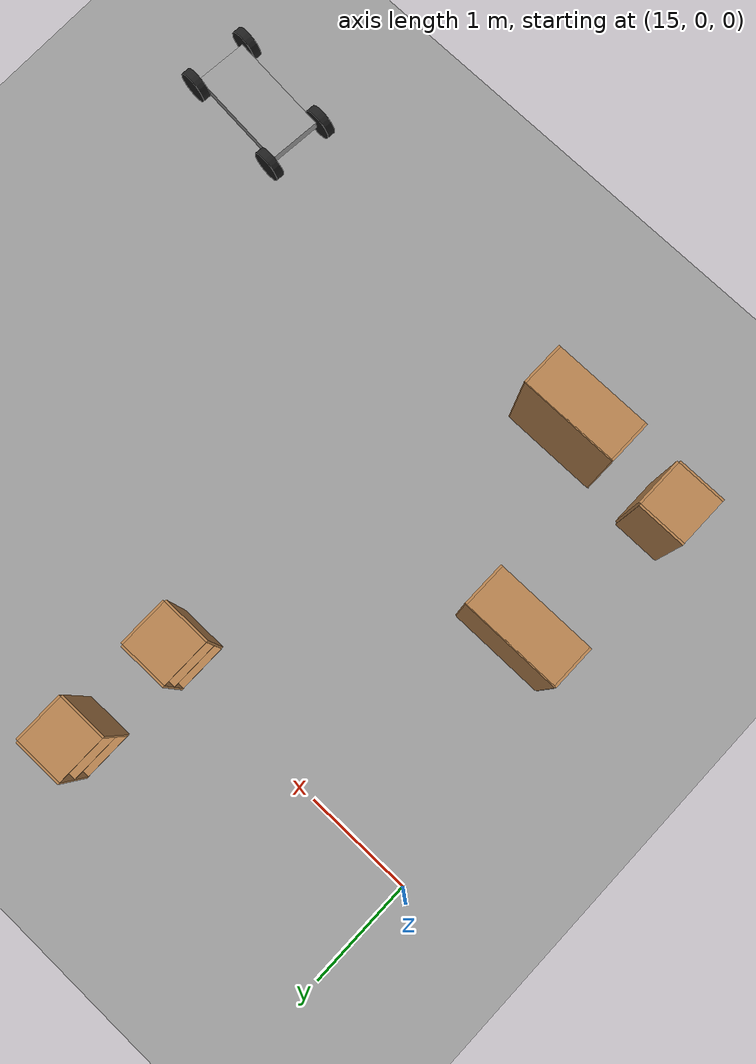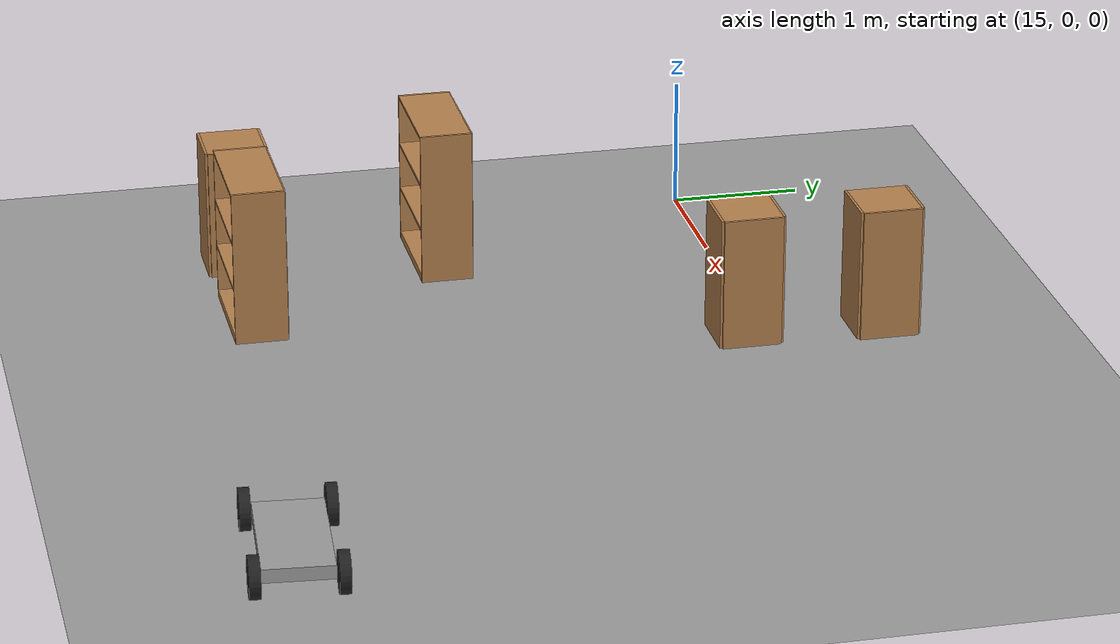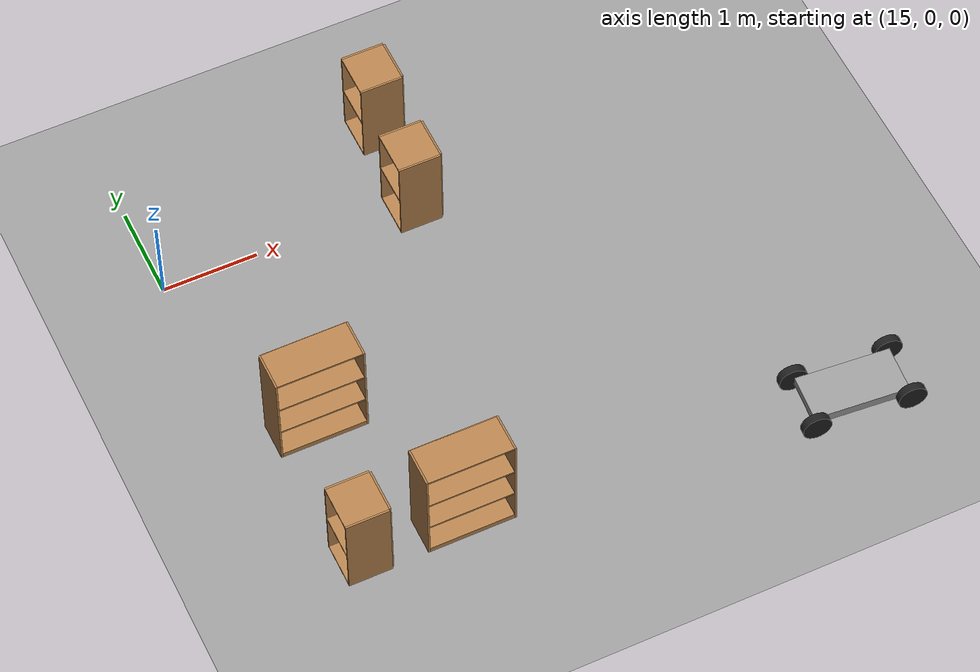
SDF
<sdf version="1.4">
 <world name="default">
  <model name="bookshelf">
   <static>1</static>
   <link name="link">
    <inertial><mass>1</mass></inertial>
    <collision name="back">
     <pose>0 0.005 0.6 0 -0 0</pose>
     <geometry><box><size>0.9 0.01 1.2</size></box></geometry>
    </collision>
    <visual name="visual1">
     <pose>0 0.005 0.6 0 -0 0</pose>
     <geometry><box><size>0.9 0.01 1.2</size></box></geometry>
     <material>
      <script><uri>file://media/materials/scripts/gazebo.material</uri><name>Gazebo/Wood</name></script>
     </material>
    </visual>
    <collision name="left_side">
     <pose>0.45 -0.195 0.6 0 -0 0</pose>
     <geometry><box><size>0.02 0.4 1.2</size></box></geometry>
    </collision>
    <visual name="visual2">
     <pose>0.45 -0.195 0.6 0 -0 0</pose>
     <geometry><box><size>0.02 0.4 1.2</size></box></geometry>
     <material>
      <script><uri>file://media/materials/scripts/gazebo.material</uri><name>Gazebo/Wood</name></script>
     </material>
    </visual>
    <collision name="right_side">
     <pose>-0.45 -0.195 0.6 0 -0 0</pose>
     <geometry><box><size>0.02 0.4 1.2</size></box></geometry>
    </collision>
    <visual name="visual3">
     <pose>-0.45 -0.195 0.6 0 -0 0</pose>
     <geometry><box><size>0.02 0.4 1.2</size></box></geometry>
     <material>
      <script><uri>file://media/materials/scripts/gazebo.material</uri><name>Gazebo/Wood</name></script>
     </material>
    </visual>
    <collision name="bottom">
     <pose>0 -0.195 0.03 0 -0 0</pose>
     <geometry><box><size>0.88 0.4 0.06</size></box></geometry>
    </collision>
    <visual name="visual4">
     <pose>0 -0.195 0.03 0 -0 0</pose>
     <geometry><box><size>0.88 0.4 0.06</size></box></geometry>
     <material>
      <script><uri>file://media/materials/scripts/gazebo.material</uri><name>Gazebo/Wood</name></script>
     </material>
    </visual>
    <collision name="top">
     <pose>0 -0.195 1.19 0 -0 0</pose>
     <geometry><box><size>0.88 0.4 0.02</size></box></geometry>
    </collision>
    <visual name="visual5">
     <pose>0 -0.195 1.19 0 -0 0</pose>
     <geometry><box><size>0.88 0.4 0.02</size></box></geometry>
     <material>
      <script><uri>file://media/materials/scripts/gazebo.material</uri><name>Gazebo/Wood</name></script>
     </material>
    </visual>
    <collision name="low_shelf">
     <pose>0 -0.195 0.43 0 -0 0</pose>
     <geometry><box><size>0.88 0.4 0.02</size></box></geometry>
    </collision>
    <visual name="visual6">
     <pose>0 -0.195 0.43 0 -0 0</pose>
     <geometry><box><size>0.88 0.4 0.02</size></box></geometry>
     <material>
      <script><uri>file://media/materials/scripts/gazebo.material</uri><name>Gazebo/Wood</name></script>
     </material>
    </visual>
    <collision name="high_shelf">
     <pose>0 -0.195 0.8 0 -0 0</pose>
     <geometry><box><size>0.88 0.4 0.02</size></box></geometry>
    </collision>
    <visual name="visual7">
     <pose>0 -0.195 0.8 0 -0 0</pose>
     <geometry><box><size>0.88 0.4 0.02</size></box></geometry>
     <material>
      <script><uri>file://media/materials/scripts/gazebo.material</uri><name>Gazebo/Wood</name></script>
     </material>
    </visual>
    <velocity_decay><linear>0</linear><angular>0</angular></velocity_decay>
   </link>
   <pose>15.7272 -1.91134 0 0 -0 0</pose>
  </model>
  <model name="ground_plane_0">
   <static>1</static>
   <link name="link">
    <collision name="collision">
     <geometry><plane><normal>0 0 1</normal><size>100 100</size></plane></geometry>
     <surface><friction><ode><mu>100</mu><mu2>50</mu2></ode></friction></surface>
    </collision>
    <visual name="visual">
     <cast_shadows>0</cast_shadows>
     <geometry><plane><normal>0 0 1</normal><size>100 100</size></plane></geometry>
     <material>
      <script><uri>file://media/materials/scripts/gazebo.material</uri><name>Gazebo/Grey</name></script>
     </material>
    </visual>
    <velocity_decay><linear>0</linear><angular>0</angular></velocity_decay>
   </link>
   <pose>0.497681 0 0 0 -0 0</pose>
  </model>
  <model name="cabinet">
   <static>1</static>
   <link name="cabinet_bottom_plate">
    <inertial>
     <pose>0 0 -1 0 -0 0</pose>
     <inertia><ixx>2.05</ixx><ixy>0</ixy><ixz>0</ixz><iyy>2.05</iyy><iyz>0</iyz><izz>2.05</izz></inertia>
     <mass>25</mass>
    </inertial>
    <collision name="cabinet_bottom_plate_geom">
     <pose>0 0 0.01 0 -0 0</pose>
     <geometry><box><size>0.45 0.45 0.02</size></box></geometry>
    </collision>
    <visual name="cabinet_bottom_plate_geom_visual">
     <pose>0 0 0.01 0 -0 0</pose>
     <geometry><box><size>0.45 0.45 0.02</size></box></geometry>
     <material>
      <script><uri>file://media/materials/scripts/gazebo.material</uri><name>Gazebo/Wood</name></script>
     </material>
    </visual>
    <collision name="cabinet_bottom_plate_geom_cabinet_back_plate">
     <pose>0.235 0 0.51 0 -0 0</pose>
     <geometry><box><size>0.02 0.45 1.02</size></box></geometry>
    </collision>
    <visual name="cabinet_bottom_plate_geom_cabinet_back_plate_visual">
     <pose>0.235 0 0.51 0 -0 0</pose>
     <geometry><box><size>0.02 0.45 1.02</size></box></geometry>
     <material>
      <script><uri>file://media/materials/scripts/gazebo.material</uri><name>Gazebo/Wood</name></script>
     </material>
    </visual>
    <collision name="cabinet_bottom_plate_geom_cabinet_left_plate">
     <pose>0 0.235 0.51 0 -0 0</pose>
     <geometry><box><size>0.45 0.02 1.02</size></box></geometry>
    </collision>
    <visual name="cabinet_bottom_plate_geom_cabinet_left_plate_visual">
     <pose>0 0.235 0.51 0 -0 0</pose>
     <geometry><box><size>0.45 0.02 1.02</size></box></geometry>
     <material>
      <script><uri>file://media/materials/scripts/gazebo.material</uri><name>Gazebo/Wood</name></script>
     </material>
    </visual>
    <collision name="cabinet_bottom_plate_geom_cabinet_middle_plate">
     <pose>0 0 0.51 0 -0 0</pose>
     <geometry><box><size>0.45 0.45 0.02</size></box></geometry>
    </collision>
    <visual name="cabinet_bottom_plate_geom_cabinet_middle_plate_visual">
     <pose>0 0 0.51 0 -0 0</pose>
     <geometry><box><size>0.45 0.45 0.02</size></box></geometry>
     <material>
      <script><uri>file://media/materials/scripts/gazebo.material</uri><name>Gazebo/Wood</name></script>
     </material>
    </visual>
    <collision name="cabinet_bottom_plate_geom_cabinet_right_plate">
     <pose>0 -0.235 0.51 0 -0 0</pose>
     <geometry><box><size>0.45 0.02 1.02</size></box></geometry>
    </collision>
    <visual name="cabinet_bottom_plate_geom_cabinet_right_plate_visual">
     <pose>0 -0.235 0.51 0 -0 0</pose>
     <geometry><box><size>0.45 0.02 1.02</size></box></geometry>
     <material>
      <script><uri>file://media/materials/scripts/gazebo.material</uri><name>Gazebo/Wood</name></script>
     </material>
    </visual>
    <collision name="cabinet_bottom_plate_geom_cabinet_top_plate">
     <pose>0 0 1.01 0 -0 0</pose>
     <geometry><box><size>0.45 0.45 0.02</size></box></geometry>
    </collision>
    <visual name="cabinet_bottom_plate_geom_cabinet_top_plate_visual">
     <pose>0 0 1.01 0 -0 0</pose>
     <geometry><box><size>0.45 0.45 0.02</size></box></geometry>
     <material>
      <script><uri>file://media/materials/scripts/gazebo.material</uri><name>Gazebo/Wood</name></script>
     </material>
    </visual>
    <velocity_decay><linear>0</linear><angular>0</angular></velocity_decay>
   </link>
   <pose>15.496 -3.64928 0 0 -0 0</pose>
  </model>
  <model name="bookshelf_0">
   <static>1</static>
   <link name="link">
    <inertial><mass>1</mass></inertial>
    <collision name="back">
     <pose>0 0.005 0.6 0 -0 0</pose>
     <geometry><box><size>0.9 0.01 1.2</size></box></geometry>
    </collision>
    <visual name="visual1">
     <pose>0 0.005 0.6 0 -0 0</pose>
     <geometry><box><size>0.9 0.01 1.2</size></box></geometry>
     <material>
      <script><uri>file://media/materials/scripts/gazebo.material</uri><name>Gazebo/Wood</name></script>
     </material>
    </visual>
    <collision name="left_side">
     <pose>0.45 -0.195 0.6 0 -0 0</pose>
     <geometry><box><size>0.02 0.4 1.2</size></box></geometry>
    </collision>
    <visual name="visual2">
     <pose>0.45 -0.195 0.6 0 -0 0</pose>
     <geometry><box><size>0.02 0.4 1.2</size></box></geometry>
     <material>
      <script><uri>file://media/materials/scripts/gazebo.material</uri><name>Gazebo/Wood</name></script>
     </material>
    </visual>
    <collision name="right_side">
     <pose>-0.45 -0.195 0.6 0 -0 0</pose>
     <geometry><box><size>0.02 0.4 1.2</size></box></geometry>
    </collision>
    <visual name="visual3">
     <pose>-0.45 -0.195 0.6 0 -0 0</pose>
     <geometry><box><size>0.02 0.4 1.2</size></box></geometry>
     <material>
      <script><uri>file://media/materials/scripts/gazebo.material</uri><name>Gazebo/Wood</name></script>
     </material>
    </visual>
    <collision name="bottom">
     <pose>0 -0.195 0.03 0 -0 0</pose>
     <geometry><box><size>0.88 0.4 0.06</size></box></geometry>
    </collision>
    <visual name="visual4">
     <pose>0 -0.195 0.03 0 -0 0</pose>
     <geometry><box><size>0.88 0.4 0.06</size></box></geometry>
     <material>
      <script><uri>file://media/materials/scripts/gazebo.material</uri><name>Gazebo/Wood</name></script>
     </material>
    </visual>
    <collision name="top">
     <pose>0 -0.195 1.19 0 -0 0</pose>
     <geometry><box><size>0.88 0.4 0.02</size></box></geometry>
    </collision>
    <visual name="visual5">
     <pose>0 -0.195 1.19 0 -0 0</pose>
     <geometry><box><size>0.88 0.4 0.02</size></box></geometry>
     <material>
      <script><uri>file://media/materials/scripts/gazebo.material</uri><name>Gazebo/Wood</name></script>
     </material>
    </visual>
    <collision name="low_shelf">
     <pose>0 -0.195 0.43 0 -0 0</pose>
     <geometry><box><size>0.88 0.4 0.02</size></box></geometry>
    </collision>
    <visual name="visual6">
     <pose>0 -0.195 0.43 0 -0 0</pose>
     <geometry><box><size>0.88 0.4 0.02</size></box></geometry>
     <material>
      <script><uri>file://media/materials/scripts/gazebo.material</uri><name>Gazebo/Wood</name></script>
     </material>
    </visual>
    <collision name="high_shelf">
     <pose>0 -0.195 0.8 0 -0 0</pose>
     <geometry><box><size>0.88 0.4 0.02</size></box></geometry>
    </collision>
    <visual name="visual7">
     <pose>0 -0.195 0.8 0 -0 0</pose>
     <geometry><box><size>0.88 0.4 0.02</size></box></geometry>
     <material>
      <script><uri>file://media/materials/scripts/gazebo.material</uri><name>Gazebo/Wood</name></script>
     </material>
    </visual>
    <velocity_decay><linear>0</linear><angular>0</angular></velocity_decay>
   </link>
   <pose>16.5579 -3.48331 0 0 -0 0</pose>
  </model>
  <model name="cart_rigid_suspension">
   <link name="chassis">
    <pose>0 0 0.15 0 -0 0</pose>
    <inertial>
     <pose>0.1 0 0 0 -0 0</pose>
     <mass>10</mass>
     <inertia>
      <ixx>0.216667</ixx>
      <iyy>0.841667</iyy>
      <izz>1.04167</izz>
      <ixy>0</ixy>
      <ixz>0</ixz>
      <iyz>0</iyz>
     </inertia>
    </inertial>
    <collision name="collision"><geometry><box><size>1 0.5 0.1</size></box></geometry></collision>
    <visual name="visual">
     <geometry><box><size>1 0.5 0.1</size></box></geometry>
     <material>
      <script><uri>file://media/materials/scripts/gazebo.material</uri><name>Gazebo/Grey</name></script>
     </material>
    </visual>
    <velocity_decay><linear>0</linear><angular>0</angular></velocity_decay>
   </link>
   <link name="wheel_front_left">
    <pose>0.5 0.298 0.15 -1.5708 0 0</pose>
    <inertial>
     <mass>0.5</mass>
     <inertia>
      <ixx>0.00307917</ixx>
      <iyy>0.00307917</iyy>
      <izz>0.005625</izz>
      <ixy>0</ixy>
      <ixz>0</ixz>
      <iyz>0</iyz>
     </inertia>
    </inertial>
    <collision name="collision">
     <geometry><cylinder><radius>0.15</radius><length>0.08</length></cylinder></geometry>
    </collision>
    <visual name="visual">
     <geometry><cylinder><radius>0.15</radius><length>0.08</length></cylinder></geometry>
     <material>
      <script><uri>file://media/materials/scripts/gazebo.material</uri><name>Gazebo/Black</name></script>
     </material>
    </visual>
    <velocity_decay><linear>0</linear><angular>0</angular></velocity_decay>
   </link>
   <joint name="wheel_front_left_spin" type="revolute">
    <parent>chassis</parent>
    <child>wheel_front_left</child>
    <axis><xyz>0 0 1</xyz><limit><lower>-1e+16</lower><upper>1e+16</upper></limit></axis>
   </joint>
   <link name="wheel_front_right">
    <pose>0.5 -0.298 0.15 -1.5708 0 0</pose>
    <inertial>
     <mass>0.5</mass>
     <inertia>
      <ixx>0.00307917</ixx>
      <iyy>0.00307917</iyy>
      <izz>0.005625</izz>
      <ixy>0</ixy>
      <ixz>0</ixz>
      <iyz>0</iyz>
     </inertia>
    </inertial>
    <collision name="collision">
     <geometry><cylinder><radius>0.15</radius><length>0.08</length></cylinder></geometry>
    </collision>
    <visual name="visual">
     <geometry><cylinder><radius>0.15</radius><length>0.08</length></cylinder></geometry>
     <material>
      <script><uri>file://media/materials/scripts/gazebo.material</uri><name>Gazebo/Black</name></script>
     </material>
    </visual>
    <velocity_decay><linear>0</linear><angular>0</angular></velocity_decay>
   </link>
   <joint name="wheel_front_right_spin" type="revolute">
    <parent>chassis</parent>
    <child>wheel_front_right</child>
    <axis><xyz>0 0 1</xyz><limit><lower>-1e+16</lower><upper>1e+16</upper></limit></axis>
   </joint>
   <link name="wheel_rear_left">
    <pose>-0.5 0.298 0.15 -1.5708 0 0</pose>
    <inertial>
     <mass>0.5</mass>
     <inertia>
      <ixx>0.00307917</ixx>
      <iyy>0.00307917</iyy>
      <izz>0.005625</izz>
      <ixy>0</ixy>
      <ixz>0</ixz>
      <iyz>0</iyz>
     </inertia>
    </inertial>
    <collision name="collision">
     <geometry><cylinder><radius>0.15</radius><length>0.08</length></cylinder></geometry>
    </collision>
    <visual name="visual">
     <geometry><cylinder><radius>0.15</radius><length>0.08</length></cylinder></geometry>
     <material>
      <script><uri>file://media/materials/scripts/gazebo.material</uri><name>Gazebo/Black</name></script>
     </material>
    </visual>
    <velocity_decay><linear>0</linear><angular>0</angular></velocity_decay>
   </link>
   <joint name="wheel_rear_left_spin" type="revolute">
    <parent>chassis</parent>
    <child>wheel_rear_left</child>
    <axis><xyz>0 0 1</xyz><limit><lower>-1e+16</lower><upper>1e+16</upper></limit></axis>
   </joint>
   <link name="wheel_rear_right">
    <pose>-0.5 -0.298 0.15 -1.5708 0 0</pose>
    <inertial>
     <mass>0.5</mass>
     <inertia>
      <ixx>0.00307917</ixx>
      <iyy>0.00307917</iyy>
      <izz>0.005625</izz>
      <ixy>0</ixy>
      <ixz>0</ixz>
      <iyz>0</iyz>
     </inertia>
    </inertial>
    <collision name="collision">
     <geometry><cylinder><radius>0.15</radius><length>0.08</length></cylinder></geometry>
    </collision>
    <visual name="visual">
     <geometry><cylinder><radius>0.15</radius><length>0.08</length></cylinder></geometry>
     <material>
      <script><uri>file://media/materials/scripts/gazebo.material</uri><name>Gazebo/Black</name></script>
     </material>
    </visual>
    <velocity_decay><linear>0</linear><angular>0</angular></velocity_decay>
   </link>
   <joint name="wheel_rear_right_spin" type="revolute">
    <parent>chassis</parent>
    <child>wheel_rear_right</child>
    <axis><xyz>0 0 1</xyz><limit><lower>-1e+16</lower><upper>1e+16</upper></limit></axis>
   </joint>
   <pose>20.5446 -4.01005 2.2e-05 -5.3e-05 -5.8e-05 -0.085562</pose>
   <static>0</static>
  </model>
  <model name="cabinet_0">
   <static>1</static>
   <link name="cabinet_bottom_plate">
    <inertial>
     <pose>0 0 -1 0 -0 0</pose>
     <inertia><ixx>2.05</ixx><ixy>0</ixy><ixz>0</ixz><iyy>2.05</iyy><iyz>0</iyz><izz>2.05</izz></inertia>
     <mass>25</mass>
    </inertial>
    <collision name="cabinet_bottom_plate_geom">
     <pose>0 0 0.01 0 -0 0</pose>
     <geometry><box><size>0.45 0.45 0.02</size></box></geometry>
    </collision>
    <visual name="cabinet_bottom_plate_geom_visual">
     <pose>0 0 0.01 0 -0 0</pose>
     <geometry><box><size>0.45 0.45 0.02</size></box></geometry>
     <material>
      <script><uri>file://media/materials/scripts/gazebo.material</uri><name>Gazebo/Wood</name></script>
     </material>
    </visual>
    <collision name="cabinet_bottom_plate_geom_cabinet_back_plate">
     <pose>0.235 0 0.51 0 -0 0</pose>
     <geometry><box><size>0.02 0.45 1.02</size></box></geometry>
    </collision>
    <visual name="cabinet_bottom_plate_geom_cabinet_back_plate_visual">
     <pose>0.235 0 0.51 0 -0 0</pose>
     <geometry><box><size>0.02 0.45 1.02</size></box></geometry>
     <material>
      <script><uri>file://media/materials/scripts/gazebo.material</uri><name>Gazebo/Wood</name></script>
     </material>
    </visual>
    <collision name="cabinet_bottom_plate_geom_cabinet_left_plate">
     <pose>0 0.235 0.51 0 -0 0</pose>
     <geometry><box><size>0.45 0.02 1.02</size></box></geometry>
    </collision>
    <visual name="cabinet_bottom_plate_geom_cabinet_left_plate_visual">
     <pose>0 0.235 0.51 0 -0 0</pose>
     <geometry><box><size>0.45 0.02 1.02</size></box></geometry>
     <material>
      <script><uri>file://media/materials/scripts/gazebo.material</uri><name>Gazebo/Wood</name></script>
     </material>
    </visual>
    <collision name="cabinet_bottom_plate_geom_cabinet_middle_plate">
     <pose>0 0 0.51 0 -0 0</pose>
     <geometry><box><size>0.45 0.45 0.02</size></box></geometry>
    </collision>
    <visual name="cabinet_bottom_plate_geom_cabinet_middle_plate_visual">
     <pose>0 0 0.51 0 -0 0</pose>
     <geometry><box><size>0.45 0.45 0.02</size></box></geometry>
     <material>
      <script><uri>file://media/materials/scripts/gazebo.material</uri><name>Gazebo/Wood</name></script>
     </material>
    </visual>
    <collision name="cabinet_bottom_plate_geom_cabinet_right_plate">
     <pose>0 -0.235 0.51 0 -0 0</pose>
     <geometry><box><size>0.45 0.02 1.02</size></box></geometry>
    </collision>
    <visual name="cabinet_bottom_plate_geom_cabinet_right_plate_visual">
     <pose>0 -0.235 0.51 0 -0 0</pose>
     <geometry><box><size>0.45 0.02 1.02</size></box></geometry>
     <material>
      <script><uri>file://media/materials/scripts/gazebo.material</uri><name>Gazebo/Wood</name></script>
     </material>
    </visual>
    <collision name="cabinet_bottom_plate_geom_cabinet_top_plate">
     <pose>0 0 1.01 0 -0 0</pose>
     <geometry><box><size>0.45 0.45 0.02</size></box></geometry>
    </collision>
    <visual name="cabinet_bottom_plate_geom_cabinet_top_plate_visual">
     <pose>0 0 1.01 0 -0 0</pose>
     <geometry><box><size>0.45 0.45 0.02</size></box></geometry>
     <material>
      <script><uri>file://media/materials/scripts/gazebo.material</uri><name>Gazebo/Wood</name></script>
     </material>
    </visual>
    <velocity_decay><linear>0</linear><angular>0</angular></velocity_decay>
   </link>
   <pose>17.6375 -0.129343 0 0 -0 0</pose>
  </model>
  <model name="cabinet_1">
   <static>1</static>
   <link name="cabinet_bottom_plate">
    <inertial>
     <pose>0 0 -1 0 -0 0</pose>
     <inertia><ixx>2.05</ixx><ixy>0</ixy><ixz>0</ixz><iyy>2.05</iyy><iyz>0</iyz><izz>2.05</izz></inertia>
     <mass>25</mass>
    </inertial>
    <collision name="cabinet_bottom_plate_geom">
     <pose>0 0 0.01 0 -0 0</pose>
     <geometry><box><size>0.45 0.45 0.02</size></box></geometry>
    </collision>
    <visual name="cabinet_bottom_plate_geom_visual">
     <pose>0 0 0.01 0 -0 0</pose>
     <geometry><box><size>0.45 0.45 0.02</size></box></geometry>
     <material>
      <script><uri>file://media/materials/scripts/gazebo.material</uri><name>Gazebo/Wood</name></script>
     </material>
    </visual>
    <collision name="cabinet_bottom_plate_geom_cabinet_back_plate">
     <pose>0.235 0 0.51 0 -0 0</pose>
     <geometry><box><size>0.02 0.45 1.02</size></box></geometry>
    </collision>
    <visual name="cabinet_bottom_plate_geom_cabinet_back_plate_visual">
     <pose>0.235 0 0.51 0 -0 0</pose>
     <geometry><box><size>0.02 0.45 1.02</size></box></geometry>
     <material>
      <script><uri>file://media/materials/scripts/gazebo.material</uri><name>Gazebo/Wood</name></script>
     </material>
    </visual>
    <collision name="cabinet_bottom_plate_geom_cabinet_left_plate">
     <pose>0 0.235 0.51 0 -0 0</pose>
     <geometry><box><size>0.45 0.02 1.02</size></box></geometry>
    </collision>
    <visual name="cabinet_bottom_plate_geom_cabinet_left_plate_visual">
     <pose>0 0.235 0.51 0 -0 0</pose>
     <geometry><box><size>0.45 0.02 1.02</size></box></geometry>
     <material>
      <script><uri>file://media/materials/scripts/gazebo.material</uri><name>Gazebo/Wood</name></script>
     </material>
    </visual>
    <collision name="cabinet_bottom_plate_geom_cabinet_middle_plate">
     <pose>0 0 0.51 0 -0 0</pose>
     <geometry><box><size>0.45 0.45 0.02</size></box></geometry>
    </collision>
    <visual name="cabinet_bottom_plate_geom_cabinet_middle_plate_visual">
     <pose>0 0 0.51 0 -0 0</pose>
     <geometry><box><size>0.45 0.45 0.02</size></box></geometry>
     <material>
      <script><uri>file://media/materials/scripts/gazebo.material</uri><name>Gazebo/Wood</name></script>
     </material>
    </visual>
    <collision name="cabinet_bottom_plate_geom_cabinet_right_plate">
     <pose>0 -0.235 0.51 0 -0 0</pose>
     <geometry><box><size>0.45 0.02 1.02</size></box></geometry>
    </collision>
    <visual name="cabinet_bottom_plate_geom_cabinet_right_plate_visual">
     <pose>0 -0.235 0.51 0 -0 0</pose>
     <geometry><box><size>0.45 0.02 1.02</size></box></geometry>
     <material>
      <script><uri>file://media/materials/scripts/gazebo.material</uri><name>Gazebo/Wood</name></script>
     </material>
    </visual>
    <collision name="cabinet_bottom_plate_geom_cabinet_top_plate">
     <pose>0 0 1.01 0 -0 0</pose>
     <geometry><box><size>0.45 0.45 0.02</size></box></geometry>
    </collision>
    <visual name="cabinet_bottom_plate_geom_cabinet_top_plate_visual">
     <pose>0 0 1.01 0 -0 0</pose>
     <geometry><box><size>0.45 0.45 0.02</size></box></geometry>
     <material>
      <script><uri>file://media/materials/scripts/gazebo.material</uri><name>Gazebo/Wood</name></script>
     </material>
    </visual>
    <velocity_decay><linear>0</linear><angular>0</angular></velocity_decay>
   </link>
   <pose>17.6979 0.915776 0 0 -0 0</pose>
  </model>
 </world>
</sdf>
